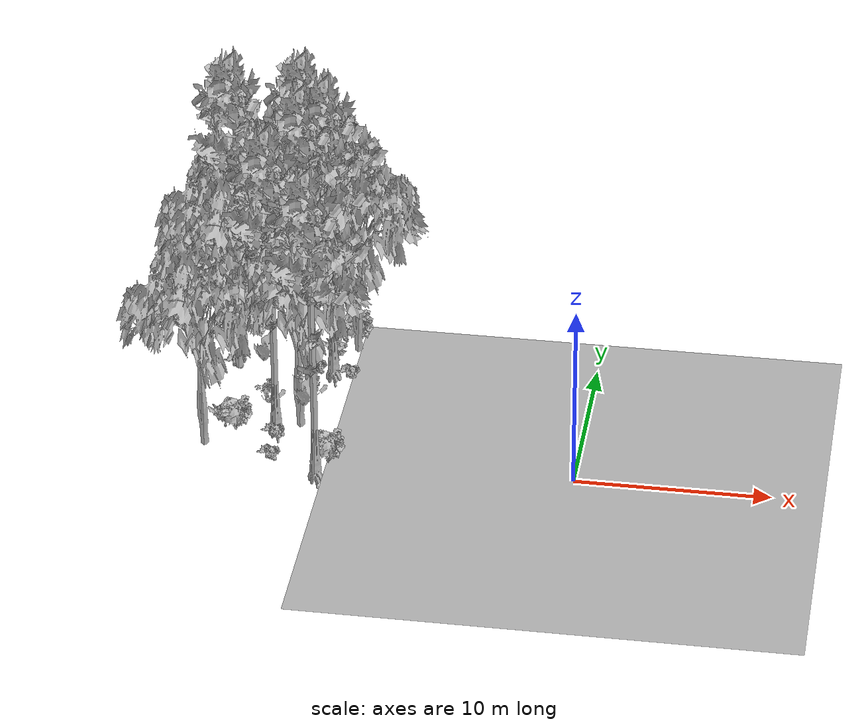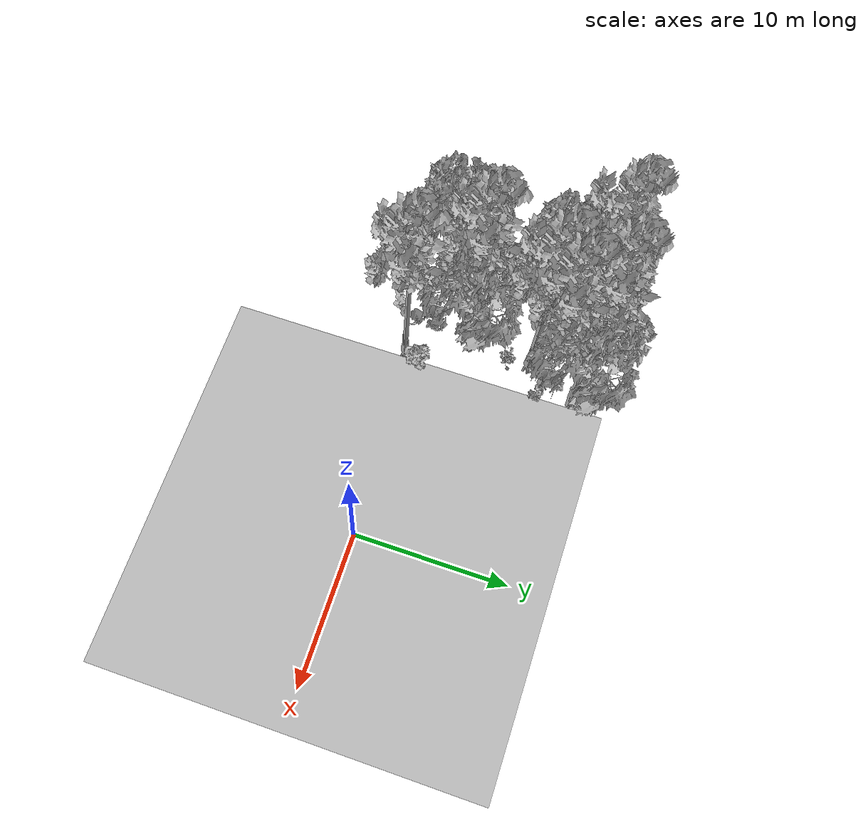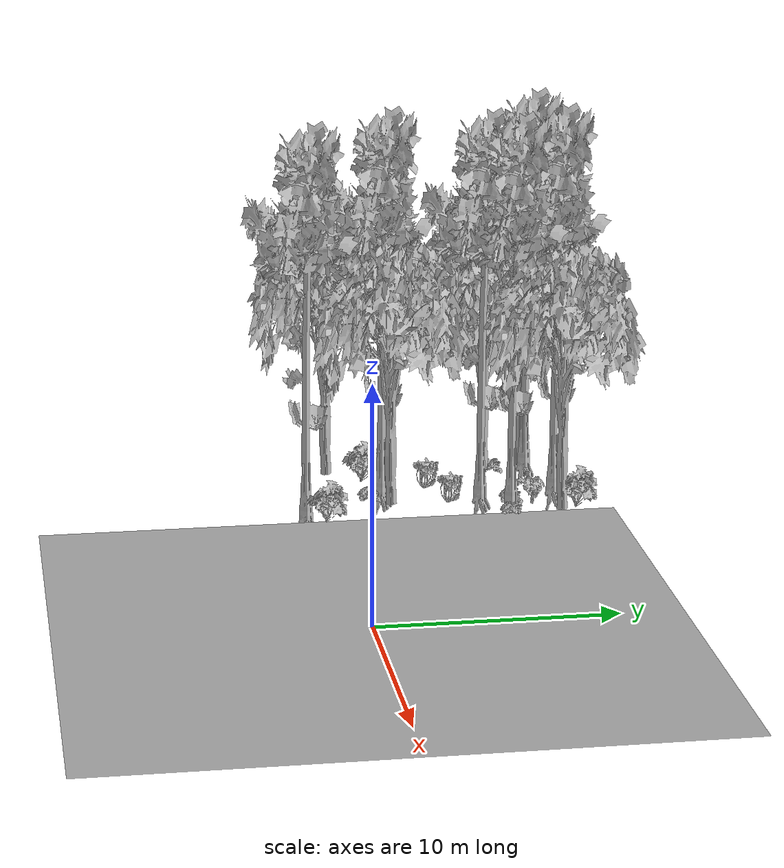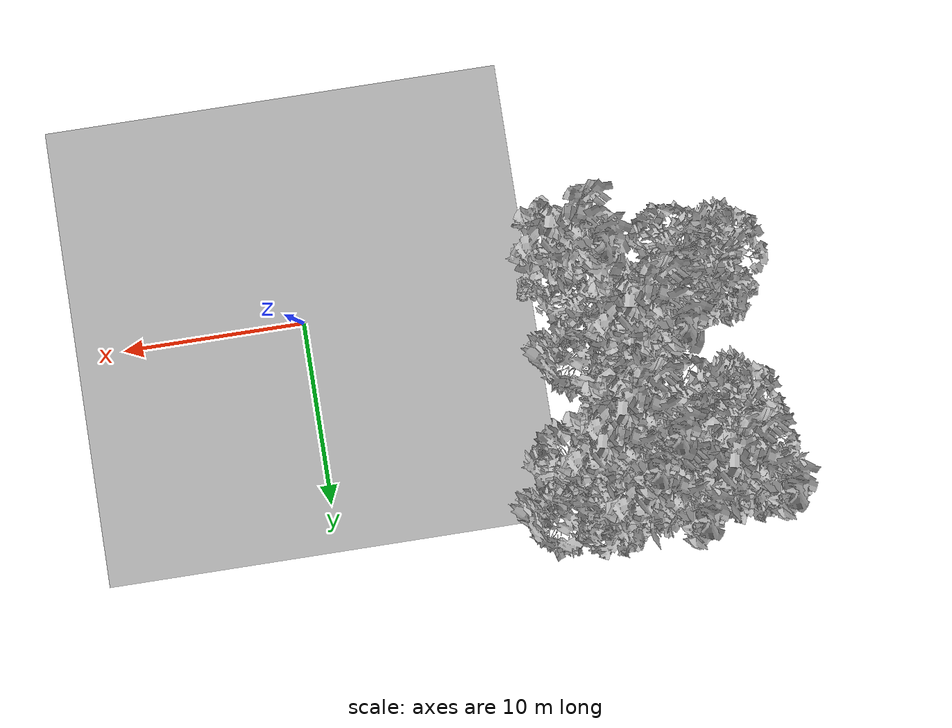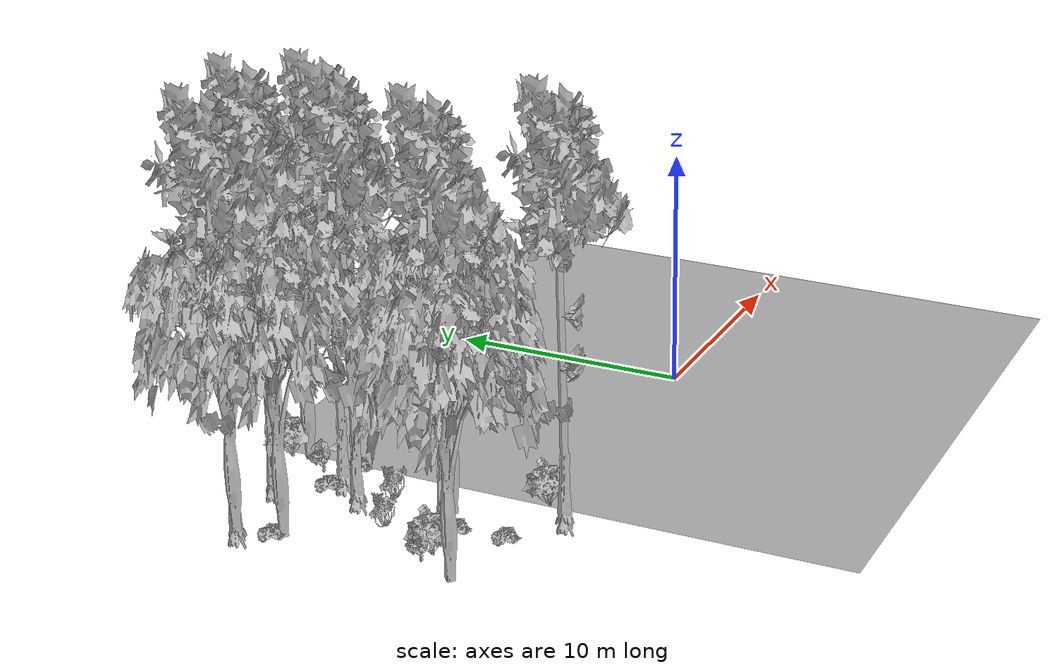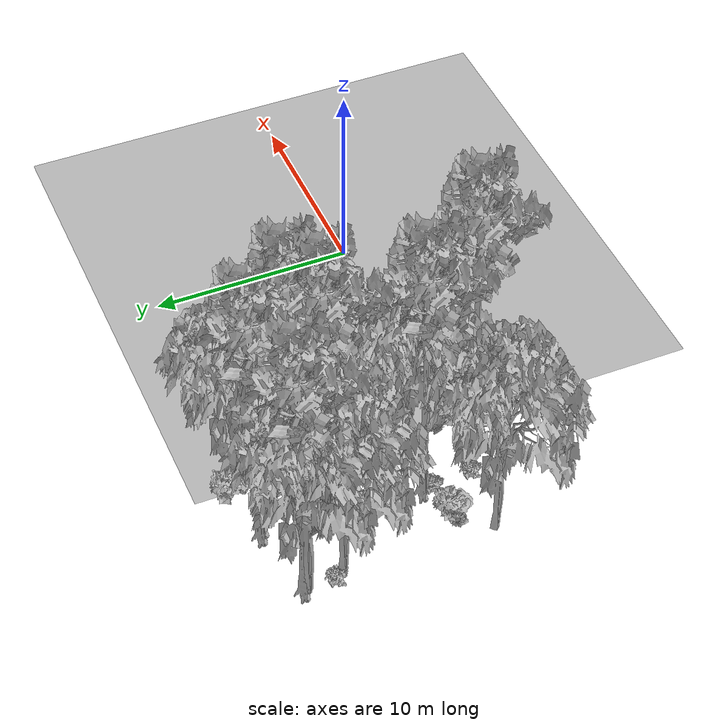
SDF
<sdf version="1.7">
 <world name="default">
  <model name="ground_plane">
   <static>1</static>
   <link name="link">
    <collision name="collision">
     <pose>-50 0 0 0 -0 0</pose>
     <geometry><plane><normal>0 0 1</normal><size>80 80</size></plane></geometry>
     <surface><contact><ode><min_depth>0.01</min_depth><max_vel>0</max_vel></ode></contact></surface>
    </collision>
    <visual name="grass">
     <cast_shadows>0</cast_shadows>
     <geometry>
      <mesh>
       <scale>0.46714285714285714 0.46714285714285714 0.1</scale>
       <uri>file://grass_plane/meshes/grass_plane.dae</uri>
      </mesh>
     </geometry>
    </visual>
   </link>
  </model>
  <model name="Tree 6">
   <static>1</static>
   <pose>-15.32339733243926 10.425857822176283 0 1.57079 -0 0</pose>
   <link name="link">
    <collision name="collision">
     <geometry><mesh><scale>3.5 5 3.5</scale><uri>model://tree_9/meshes/tree_9.obj</uri></mesh></geometry>
    </collision>
    <visual name="visual">
     <geometry><mesh><scale>3.5 5 3.5</scale><uri>model://tree_9/meshes/tree_9.obj</uri></mesh></geometry>
    </visual>
   </link>
  </model>
  <model name="Tree 123">
   <static>1</static>
   <pose>-18.797154790617505 7.855589419015772 0 1.57079 -0 0</pose>
   <link name="link">
    <collision name="collision">
     <geometry><mesh><scale>3.5 5 3.5</scale><uri>model://tree_2/meshes/tree_2.obj</uri></mesh></geometry>
    </collision>
    <visual name="visual">
     <geometry><mesh><scale>3.5 5 3.5</scale><uri>model://tree_2/meshes/tree_2.obj</uri></mesh></geometry>
    </visual>
   </link>
  </model>
  <model name="Tree 189">
   <static>1</static>
   <pose>-18.931050878044523 9.81778793869185 0 1.57079 -0 0</pose>
   <link name="link">
    <collision name="collision">
     <geometry><mesh><scale>3.5 5 3.5</scale><uri>model://tree_9/meshes/tree_9.obj</uri></mesh></geometry>
    </collision>
    <visual name="visual">
     <geometry><mesh><scale>3.5 5 3.5</scale><uri>model://tree_9/meshes/tree_9.obj</uri></mesh></geometry>
    </visual>
   </link>
  </model>
  <model name="Tree 273">
   <static>1</static>
   <pose>-19.188283773663212 9.676068684084413 0 1.57079 -0 0</pose>
   <link name="link">
    <collision name="collision">
     <geometry><mesh><scale>3.5 5 3.5</scale><uri>model://tree_2/meshes/tree_2.obj</uri></mesh></geometry>
    </collision>
    <visual name="visual">
     <geometry><mesh><scale>3.5 5 3.5</scale><uri>model://tree_2/meshes/tree_2.obj</uri></mesh></geometry>
    </visual>
   </link>
  </model>
  <model name="Tree 319">
   <static>1</static>
   <pose>-14.756493503618856 7.008170509918557 0 1.57079 -0 0</pose>
   <link name="link">
    <collision name="collision">
     <geometry><mesh><scale>3.5 5 3.5</scale><uri>model://tree_9/meshes/tree_9.obj</uri></mesh></geometry>
    </collision>
    <visual name="visual">
     <geometry><mesh><scale>3.5 5 3.5</scale><uri>model://tree_9/meshes/tree_9.obj</uri></mesh></geometry>
    </visual>
   </link>
  </model>
  <model name="Tree 396">
   <static>1</static>
   <pose>-13.022452121283113 -1.0053300790374635 0 1.57079 -0 0</pose>
   <link name="link">
    <collision name="collision">
     <geometry><mesh><scale>3.5 5 3.5</scale><uri>model://tree_9/meshes/tree_9.obj</uri></mesh></geometry>
    </collision>
    <visual name="visual">
     <geometry><mesh><scale>3.5 5 3.5</scale><uri>model://tree_9/meshes/tree_9.obj</uri></mesh></geometry>
    </visual>
   </link>
  </model>
  <model name="Tree 405">
   <static>1</static>
   <pose>-19.172915765818296 0.644564920233762 0 1.57079 -0 0</pose>
   <link name="link">
    <collision name="collision">
     <geometry><mesh><scale>3.5 5 3.5</scale><uri>model://tree_2/meshes/tree_2.obj</uri></mesh></geometry>
    </collision>
    <visual name="visual">
     <geometry><mesh><scale>3.5 5 3.5</scale><uri>model://tree_2/meshes/tree_2.obj</uri></mesh></geometry>
    </visual>
   </link>
  </model>
  <model name="Tree 413">
   <static>1</static>
   <pose>-13.73846370596231 8.211883275234356 0 1.57079 -0 0</pose>
   <link name="link">
    <collision name="collision">
     <geometry><mesh><scale>3.5 5 3.5</scale><uri>model://tree_9/meshes/tree_9.obj</uri></mesh></geometry>
    </collision>
    <visual name="visual">
     <geometry><mesh><scale>3.5 5 3.5</scale><uri>model://tree_9/meshes/tree_9.obj</uri></mesh></geometry>
    </visual>
   </link>
  </model>
  <model name="Tree 453">
   <static>1</static>
   <pose>-12.856689095149328 10.295423747641863 0 1.57079 -0 0</pose>
   <link name="link">
    <collision name="collision">
     <geometry><mesh><scale>3.5 5 3.5</scale><uri>model://tree_2/meshes/tree_2.obj</uri></mesh></geometry>
    </collision>
    <visual name="visual">
     <geometry><mesh><scale>3.5 5 3.5</scale><uri>model://tree_2/meshes/tree_2.obj</uri></mesh></geometry>
    </visual>
   </link>
  </model>
  <model name="Tree 577">
   <static>1</static>
   <pose>-14.61269448826329 2.9557291296146246 0 1.57079 -0 0</pose>
   <link name="link">
    <collision name="collision">
     <geometry><mesh><scale>3.5 5 3.5</scale><uri>model://tree_2/meshes/tree_2.obj</uri></mesh></geometry>
    </collision>
    <visual name="visual">
     <geometry><mesh><scale>3.5 5 3.5</scale><uri>model://tree_2/meshes/tree_2.obj</uri></mesh></geometry>
    </visual>
   </link>
  </model>
  <model name="Tree 621">
   <static>1</static>
   <pose>-15.756501775016538 2.713752572020482 0 1.57079 -0 0</pose>
   <link name="link">
    <collision name="collision">
     <geometry><mesh><scale>3.5 5 3.5</scale><uri>model://tree_9/meshes/tree_9.obj</uri></mesh></geometry>
    </collision>
    <visual name="visual">
     <geometry><mesh><scale>3.5 5 3.5</scale><uri>model://tree_9/meshes/tree_9.obj</uri></mesh></geometry>
    </visual>
   </link>
  </model>
  <model name="Bush 23">
   <static>1</static>
   <pose>-13.650751743293899 9.162187733398007 0 1.57079 -0 0</pose>
   <link name="link">
    <collision name="collision">
     <geometry><mesh><scale>2 2 2</scale><uri>model://bush_0/meshes/bush_0.obj</uri></mesh></geometry>
     <surface><contact><collide_without_contact>false</collide_without_contact></contact></surface>
    </collision>
    <visual name="visual">
     <geometry><mesh><scale>2 2 2</scale><uri>model://bush_0/meshes/bush_0.obj</uri></mesh></geometry>
    </visual>
   </link>
  </model>
  <model name="Bush 47">
   <static>1</static>
   <pose>-18.344667704575404 2.2565566114171105 0 1.57079 -0 0</pose>
   <link name="link">
    <collision name="collision">
     <geometry><mesh><scale>2 2 2</scale><uri>model://bush_0/meshes/bush_0.obj</uri></mesh></geometry>
     <surface><contact><collide_without_contact>false</collide_without_contact></contact></surface>
    </collision>
    <visual name="visual">
     <geometry><mesh><scale>2 2 2</scale><uri>model://bush_0/meshes/bush_0.obj</uri></mesh></geometry>
    </visual>
   </link>
  </model>
  <model name="Bush 95">
   <static>1</static>
   <pose>-14.439324523024737 5.534466150325727 0 1.57079 -0 0</pose>
   <link name="link">
    <collision name="collision">
     <geometry><mesh><scale>2 2 2</scale><uri>model://bush_4/meshes/bush_4.obj</uri></mesh></geometry>
     <surface><contact><collide_without_contact>false</collide_without_contact></contact></surface>
    </collision>
    <visual name="visual">
     <geometry><mesh><scale>2 2 2</scale><uri>model://bush_4/meshes/bush_4.obj</uri></mesh></geometry>
    </visual>
   </link>
  </model>
  <model name="Bush 141">
   <static>1</static>
   <pose>-14.681856410635653 8.358620064837858 0 1.57079 -0 0</pose>
   <link name="link">
    <collision name="collision">
     <geometry><mesh><scale>2 2 2</scale><uri>model://bush_2/meshes/bush_2.obj</uri></mesh></geometry>
     <surface><contact><collide_without_contact>false</collide_without_contact></contact></surface>
    </collision>
    <visual name="visual">
     <geometry><mesh><scale>2 2 2</scale><uri>model://bush_2/meshes/bush_2.obj</uri></mesh></geometry>
    </visual>
   </link>
  </model>
  <model name="Bush 219">
   <static>1</static>
   <pose>-12.968072155747493 10.987359587418162 0 1.57079 -0 0</pose>
   <link name="link">
    <collision name="collision">
     <geometry><mesh><scale>2 2 2</scale><uri>model://bush_1/meshes/bush_1.obj</uri></mesh></geometry>
     <surface><contact><collide_without_contact>false</collide_without_contact></contact></surface>
    </collision>
    <visual name="visual">
     <geometry><mesh><scale>2 2 2</scale><uri>model://bush_1/meshes/bush_1.obj</uri></mesh></geometry>
    </visual>
   </link>
  </model>
  <model name="Bush 243">
   <static>1</static>
   <pose>-15.643844612864203 0.1878105872497926 0 1.57079 -0 0</pose>
   <link name="link">
    <collision name="collision">
     <geometry><mesh><scale>2 2 2</scale><uri>model://bush_2/meshes/bush_2.obj</uri></mesh></geometry>
     <surface><contact><collide_without_contact>false</collide_without_contact></contact></surface>
    </collision>
    <visual name="visual">
     <geometry><mesh><scale>2 2 2</scale><uri>model://bush_2/meshes/bush_2.obj</uri></mesh></geometry>
    </visual>
   </link>
  </model>
  <model name="Bush 346">
   <static>1</static>
   <pose>-12.548958469061919 -0.16038228045951541 0 1.57079 -0 0</pose>
   <link name="link">
    <collision name="collision">
     <geometry><mesh><scale>2 2 2</scale><uri>model://bush_1/meshes/bush_1.obj</uri></mesh></geometry>
     <surface><contact><collide_without_contact>false</collide_without_contact></contact></surface>
    </collision>
    <visual name="visual">
     <geometry><mesh><scale>2 2 2</scale><uri>model://bush_1/meshes/bush_1.obj</uri></mesh></geometry>
    </visual>
   </link>
  </model>
  <model name="Bush 349">
   <static>1</static>
   <pose>-12.869668867470853 8.071078343825775 0 1.57079 -0 0</pose>
   <link name="link">
    <collision name="collision">
     <geometry><mesh><scale>2 2 2</scale><uri>model://bush_2/meshes/bush_2.obj</uri></mesh></geometry>
     <surface><contact><collide_without_contact>false</collide_without_contact></contact></surface>
    </collision>
    <visual name="visual">
     <geometry><mesh><scale>2 2 2</scale><uri>model://bush_2/meshes/bush_2.obj</uri></mesh></geometry>
    </visual>
   </link>
  </model>
  <model name="Bush 412">
   <static>1</static>
   <pose>-18.958371621380714 8.254598516833475 0 1.57079 -0 0</pose>
   <link name="link">
    <collision name="collision">
     <geometry><mesh><scale>2 2 2</scale><uri>model://bush_2/meshes/bush_2.obj</uri></mesh></geometry>
     <surface><contact><collide_without_contact>false</collide_without_contact></contact></surface>
    </collision>
    <visual name="visual">
     <geometry><mesh><scale>2 2 2</scale><uri>model://bush_2/meshes/bush_2.obj</uri></mesh></geometry>
    </visual>
   </link>
  </model>
  <model name="Bush 460">
   <static>1</static>
   <pose>-17.752055311618808 2.096520724601767 0 1.57079 -0 0</pose>
   <link name="link">
    <collision name="collision">
     <geometry><mesh><scale>2 2 2</scale><uri>model://bush_1/meshes/bush_1.obj</uri></mesh></geometry>
     <surface><contact><collide_without_contact>false</collide_without_contact></contact></surface>
    </collision>
    <visual name="visual">
     <geometry><mesh><scale>2 2 2</scale><uri>model://bush_1/meshes/bush_1.obj</uri></mesh></geometry>
    </visual>
   </link>
  </model>
  <model name="Bush 482">
   <static>1</static>
   <pose>-16.50511247115372 4.794321290911313 0 1.57079 -0 0</pose>
   <link name="link">
    <collision name="collision">
     <geometry><mesh><scale>2 2 2</scale><uri>model://bush_4/meshes/bush_4.obj</uri></mesh></geometry>
     <surface><contact><collide_without_contact>false</collide_without_contact></contact></surface>
    </collision>
    <visual name="visual">
     <geometry><mesh><scale>2 2 2</scale><uri>model://bush_4/meshes/bush_4.obj</uri></mesh></geometry>
    </visual>
   </link>
  </model>
  <model name="Bush 531">
   <static>1</static>
   <pose>-15.780443462125287 2.170685225116131 0 1.57079 -0 0</pose>
   <link name="link">
    <collision name="collision">
     <geometry><mesh><scale>2 2 2</scale><uri>model://bush_2/meshes/bush_2.obj</uri></mesh></geometry>
     <surface><contact><collide_without_contact>false</collide_without_contact></contact></surface>
    </collision>
    <visual name="visual">
     <geometry><mesh><scale>2 2 2</scale><uri>model://bush_2/meshes/bush_2.obj</uri></mesh></geometry>
    </visual>
   </link>
  </model>
 </world>
</sdf>
